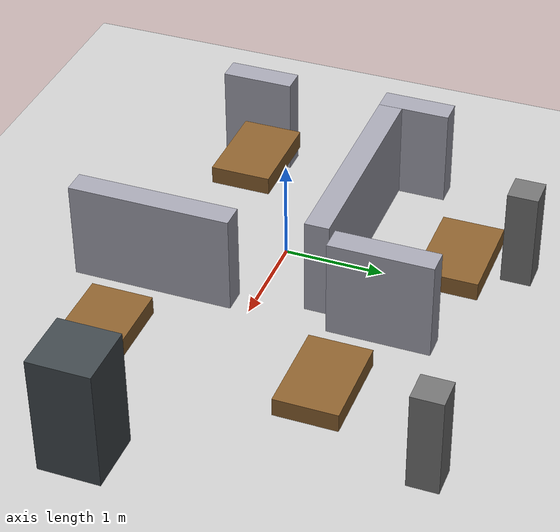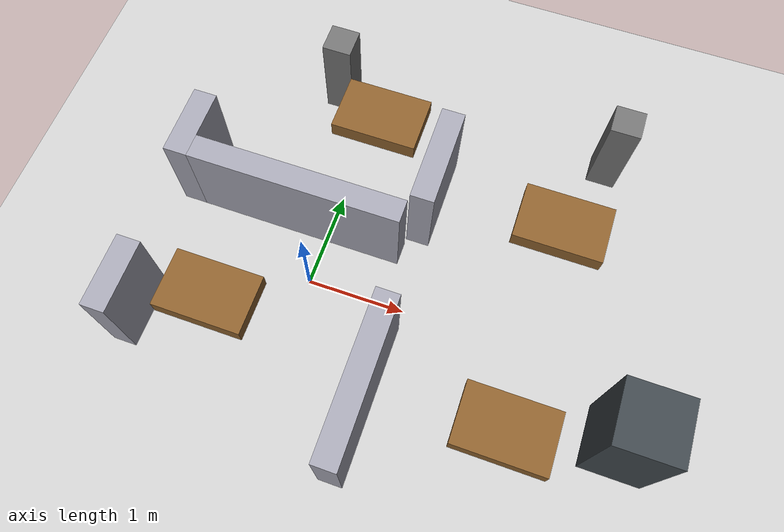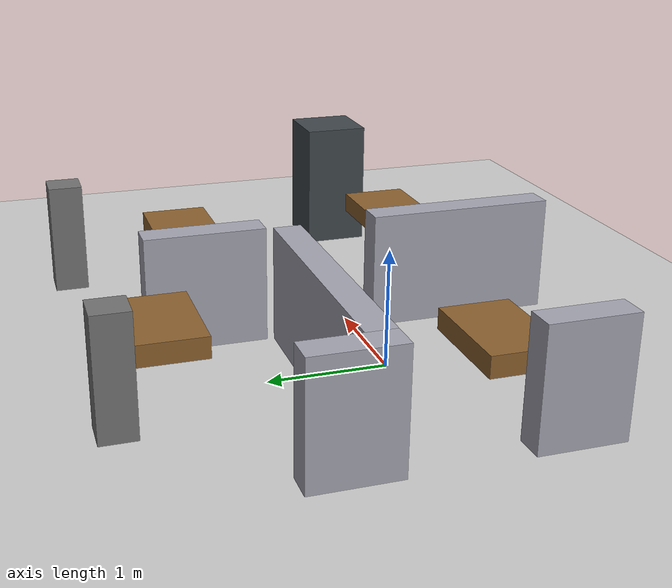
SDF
<sdf version="1.9">
 <world name="cyberzoo_office">
  <physics type="ode">
   <max_step_size>0.001</max_step_size>
   <real_time_factor>1.0</real_time_factor>
   <real_time_update_rate>0</real_time_update_rate>
  </physics>
  <gravity>0 0 -9.8</gravity>
  <magnetic_field>6e-06 2.3e-05 -4.2e-05</magnetic_field>
  <atmosphere type="adiabatic"/>
  <scene>
   <grid>false</grid>
   <ambient>0.8 0.8 0.8 1</ambient>
   <background>0.5 0.5 0.5 1</background>
   <shadows>true</shadows>
  </scene>
  <light name="sunUTC" type="directional">
   <pose>0 0 500 0 -0 0</pose>
   <intensity>1</intensity>
   <direction>0.001 0.625 -0.78</direction>
   <diffuse>0.904 0.904 0.904 1</diffuse>
   <specular>0.271 0.271 0.271 1</specular>
   <attenuation><range>2000</range><linear>0</linear><constant>1</constant><quadratic>0</quadratic></attenuation>
   <spot><inner_angle>0</inner_angle><outer_angle>0</outer_angle><falloff>0</falloff></spot>
  </light>
  <spherical_coordinates>
   <surface_model>EARTH_WGS84</surface_model>
   <world_frame_orientation>ENU</world_frame_orientation>
   <latitude_deg>51.9906361</latitude_deg>
   <longitude_deg>4.3767874</longitude_deg>
   <elevation>45.110</elevation>
  </spherical_coordinates>
  <model name="ground_plane">
   <static>true</static>
   <link name="link">
    <collision name="collision">
     <geometry><plane><normal>0 0 1</normal><size>1 1</size></plane></geometry>
    </collision>
    <visual name="visual">
     <geometry><plane><normal>0 0 1</normal><size>500 500</size></plane></geometry>
     <material>
      <ambient>0.8 0.8 0.8 1</ambient>
      <diffuse>0.8 0.8 0.8 1</diffuse>
      <specular>0.8 0.8 0.8 1</specular>
     </material>
    </visual>
   </link>
  </model>
  <model name="partition_a_lower">
   <static>true</static>
   <pose>-1.50 -0.84 0.5 0 0 0</pose>
   <link name="link">
    <collision name="collision"><geometry><box><size>0.24 0.72 1.0</size></box></geometry></collision>
    <visual name="visual">
     <geometry><box><size>0.24 0.72 1.0</size></box></geometry>
     <material>
      <ambient>0.65 0.65 0.7 1</ambient>
      <diffuse>0.65 0.65 0.7 1</diffuse>
      <specular>0.1 0.1 0.1 1</specular>
     </material>
    </visual>
   </link>
  </model>
  <model name="partition_a_upper">
   <static>true</static>
   <pose>-1.50 0.84 0.5 0 0 0</pose>
   <link name="link">
    <collision name="collision"><geometry><box><size>0.24 0.72 1.0</size></box></geometry></collision>
    <visual name="visual">
     <geometry><box><size>0.24 0.72 1.0</size></box></geometry>
     <material>
      <ambient>0.65 0.65 0.7 1</ambient>
      <diffuse>0.65 0.65 0.7 1</diffuse>
      <specular>0.1 0.1 0.1 1</specular>
     </material>
    </visual>
   </link>
  </model>
  <model name="partition_b_lower">
   <static>true</static>
   <pose>0.90 -0.99 0.5 0 0 0</pose>
   <link name="link">
    <collision name="collision"><geometry><box><size>0.24 1.62 1.0</size></box></geometry></collision>
    <visual name="visual">
     <geometry><box><size>0.24 1.62 1.0</size></box></geometry>
     <material>
      <ambient>0.65 0.65 0.7 1</ambient>
      <diffuse>0.65 0.65 0.7 1</diffuse>
      <specular>0.1 0.1 0.1 1</specular>
     </material>
    </visual>
   </link>
  </model>
  <model name="partition_b_upper">
   <static>true</static>
   <pose>0.90 1.29 0.5 0 0 0</pose>
   <link name="link">
    <collision name="collision"><geometry><box><size>0.24 1.02 1.0</size></box></geometry></collision>
    <visual name="visual">
     <geometry><box><size>0.24 1.02 1.0</size></box></geometry>
     <material>
      <ambient>0.65 0.65 0.7 1</ambient>
      <diffuse>0.65 0.65 0.7 1</diffuse>
      <specular>0.1 0.1 0.1 1</specular>
     </material>
    </visual>
   </link>
  </model>
  <model name="partition_connector">
   <static>true</static>
   <pose>-0.30 0.60 0.5 0 0 0</pose>
   <link name="link">
    <collision name="collision"><geometry><box><size>2.16 0.24 1.0</size></box></geometry></collision>
    <visual name="visual">
     <geometry><box><size>2.16 0.24 1.0</size></box></geometry>
     <material>
      <ambient>0.65 0.65 0.7 1</ambient>
      <diffuse>0.65 0.65 0.7 1</diffuse>
      <specular>0.1 0.1 0.1 1</specular>
     </material>
    </visual>
   </link>
  </model>
  <model name="desk_1">
   <static>true</static>
   <pose>-0.75 -0.60 0.51 0 0 0</pose>
   <link name="link">
    <collision name="collision"><geometry><box><size>0.9 0.6 0.18</size></box></geometry></collision>
    <visual name="visual">
     <geometry><box><size>0.9 0.6 0.18</size></box></geometry>
     <material>
      <ambient>0.55 0.38 0.18 1</ambient>
      <diffuse>0.55 0.38 0.18 1</diffuse>
      <specular>0.1 0.1 0.1 1</specular>
     </material>
    </visual>
   </link>
  </model>
  <model name="desk_2">
   <static>true</static>
   <pose>0.15 1.80 0.51 0 0 0</pose>
   <link name="link">
    <collision name="collision"><geometry><box><size>0.9 0.6 0.18</size></box></geometry></collision>
    <visual name="visual">
     <geometry><box><size>0.9 0.6 0.18</size></box></geometry>
     <material>
      <ambient>0.55 0.38 0.18 1</ambient>
      <diffuse>0.55 0.38 0.18 1</diffuse>
      <specular>0.1 0.1 0.1 1</specular>
     </material>
    </visual>
   </link>
  </model>
  <model name="desk_3">
   <static>true</static>
   <pose>2.25 -0.90 0.51 0 0 0</pose>
   <link name="link">
    <collision name="collision"><geometry><box><size>0.9 0.6 0.18</size></box></geometry></collision>
    <visual name="visual">
     <geometry><box><size>0.9 0.6 0.18</size></box></geometry>
     <material>
      <ambient>0.55 0.38 0.18 1</ambient>
      <diffuse>0.55 0.38 0.18 1</diffuse>
      <specular>0.1 0.1 0.1 1</specular>
     </material>
    </visual>
   </link>
  </model>
  <model name="desk_4">
   <static>true</static>
   <pose>2.25 1.20 0.51 0 0 0</pose>
   <link name="link">
    <collision name="collision"><geometry><box><size>0.9 0.6 0.18</size></box></geometry></collision>
    <visual name="visual">
     <geometry><box><size>0.9 0.6 0.18</size></box></geometry>
     <material>
      <ambient>0.55 0.38 0.18 1</ambient>
      <diffuse>0.55 0.38 0.18 1</diffuse>
      <specular>0.1 0.1 0.1 1</specular>
     </material>
    </visual>
   </link>
  </model>
  <model name="col_a">
   <static>true</static>
   <pose>-0.45 2.25 0.5 0 0 0</pose>
   <link name="link">
    <collision name="collision"><geometry><box><size>0.3 0.3 1.0</size></box></geometry></collision>
    <visual name="visual">
     <geometry><box><size>0.3 0.3 1.0</size></box></geometry>
     <material>
      <ambient>0.45 0.45 0.45 1</ambient>
      <diffuse>0.45 0.45 0.45 1</diffuse>
      <specular>0.1 0.1 0.1 1</specular>
     </material>
    </visual>
   </link>
  </model>
  <model name="col_b">
   <static>true</static>
   <pose>2.55 2.25 0.5 0 0 0</pose>
   <link name="link">
    <collision name="collision"><geometry><box><size>0.3 0.3 1.0</size></box></geometry></collision>
    <visual name="visual">
     <geometry><box><size>0.3 0.3 1.0</size></box></geometry>
     <material>
      <ambient>0.45 0.45 0.45 1</ambient>
      <diffuse>0.45 0.45 0.45 1</diffuse>
      <specular>0.1 0.1 0.1 1</specular>
     </material>
    </visual>
   </link>
  </model>
  <model name="rack">
   <static>true</static>
   <pose>3.30 -0.60 0.6 0 0 0</pose>
   <link name="link">
    <collision name="collision"><geometry><box><size>0.6 0.6 1.2</size></box></geometry></collision>
    <visual name="visual">
     <geometry><box><size>0.6 0.6 1.2</size></box></geometry>
     <material>
      <ambient>0.25 0.28 0.3 1</ambient>
      <diffuse>0.25 0.28 0.3 1</diffuse>
      <specular>0.1 0.1 0.1 1</specular>
     </material>
    </visual>
   </link>
  </model>
 </world>
</sdf>
